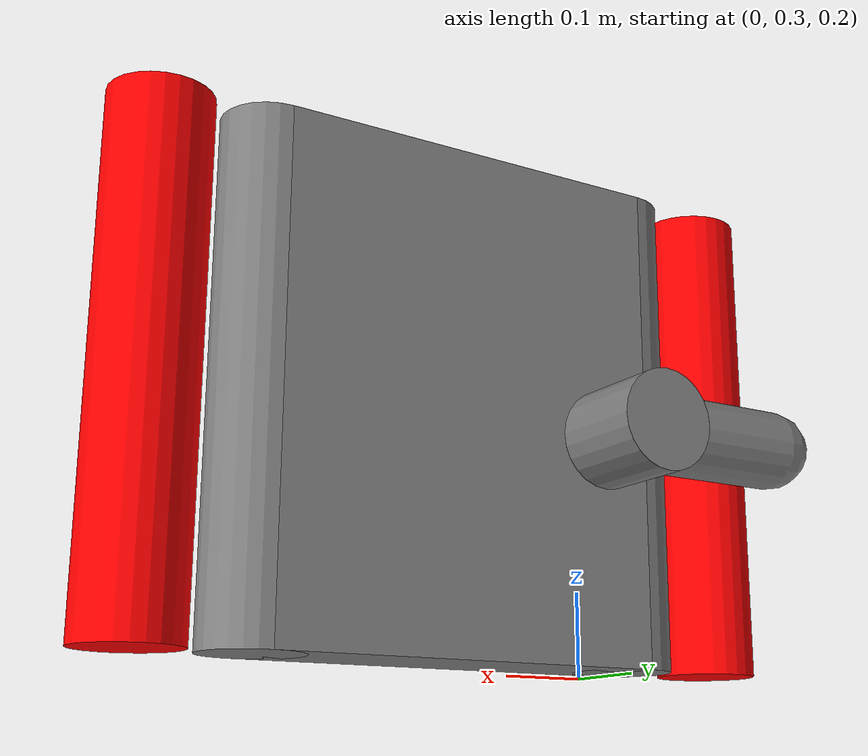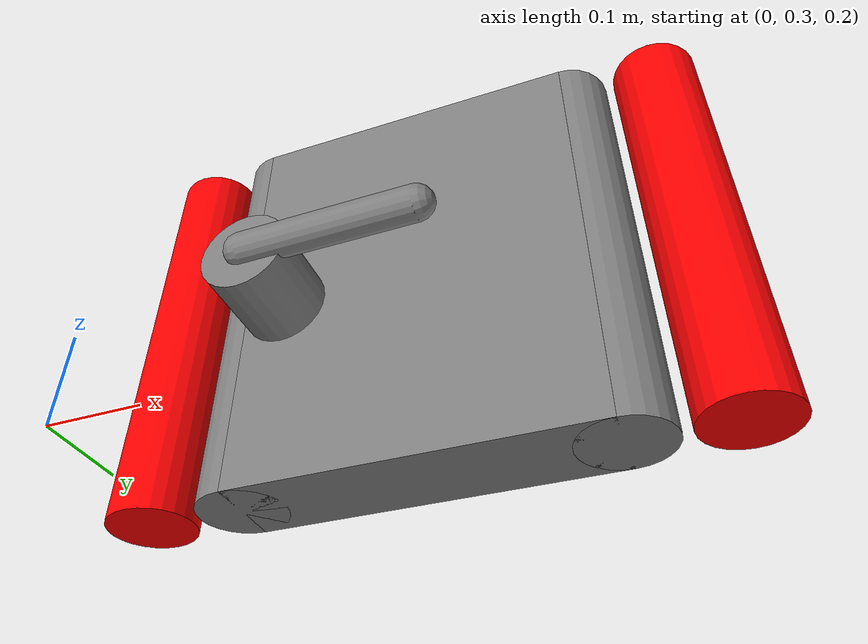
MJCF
<mujoco>
  <worldbody>
  <body name="frame" pos="0.0 0.5 0.44">
      <inertial pos="0.29 0 0" quat="0.5 0.5 0.5 0.5" mass="7.85398" diaginertia="0.923301 0.764585 0.168533" />
      <geom   size="0.05 0.25" pos="0.6 0 0" type="cylinder"  rgba="1 0 0 1" contype="1" conaffinity="1"/>
      <geom   size="0.05 0.25" pos="-0.02 0 0" type="cylinder"  rgba="1 0 0 1" contype="1" conaffinity="1"/>
      <site name="S_handle_target" pos="0.75 -0.5 -.18" size="0.025" group='3'/>
      <body name="door" pos="0.29 0 0">
          <inertial pos="0.0296816 -0.00152345 0" quat="0.701072 0 0 0.713091" mass="2.43455" diaginertia="0.0913751 0.0521615 0.043714" />
          <joint type="hinge" name="door_hinge" pos="0.31 0 0" axis="0 0 1" range="0 1.57" damping="1" frictionloss="2" />
          <geom   size="0.2 0.05 0.25" type="box" friction="1 1 1"  contype="1" conaffinity="1"/>
          <geom   size="0.05 0.25" pos="0.2 0 0" type="cylinder"  contype="1" conaffinity="1"/>
          <geom   size="0.05 0.25" pos="-0.2 0 0" type="cylinder"  contype="1" conaffinity="1"/>
          <body name="latch" pos="-0.15 0 -0.025">

              <!-- TODO: fix this inertia. -->
              <!-- as it was, the handle rotated by itself. -->
              <inertial pos="-0.017762 0.0138544 0" quat="0.365653 0.605347 -0.36522 0.605365" mass="3.53743" diaginertia="1 1 1" />
              <joint type="hinge" name="latch" pos="0 0 0" axis="0 1 0" range="0 1.8" frictionloss="5" />
              <geom   size="0.05 0.15" quat="0.707388 0.706825 0 0" type="cylinder"  contype="1" conaffinity="1"/>
              <geom   size="0.02 0.1" pos="0.1 -0.15 0" quat="0.707388 0 0.706825 0" type="capsule"  contype="1" conaffinity="1"/>
              <geom   size="0.04 0.07" pos="-0.1 0.1 0" quat="0.707388 0 0.706825 0" type="capsule"  contype="1" conaffinity="1"/>
              <site name="S_handle" pos="0.15 -0.15 0" size="0.025" group='3'/>
          </body>
      </body>
  </body>
</worldbody>
</mujoco>
